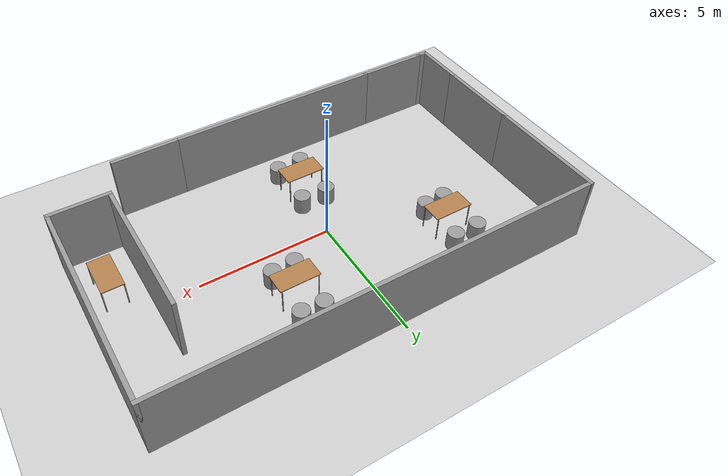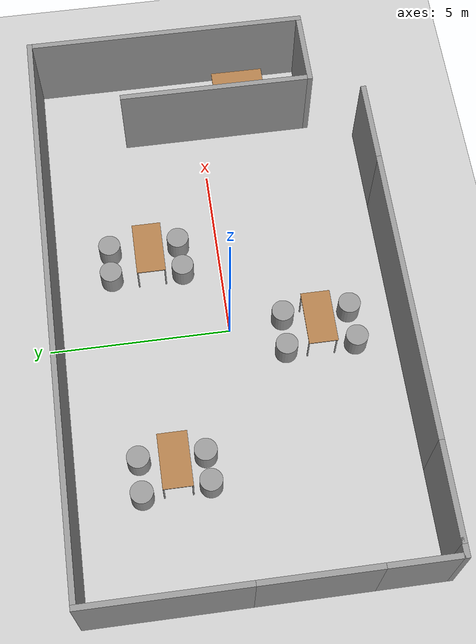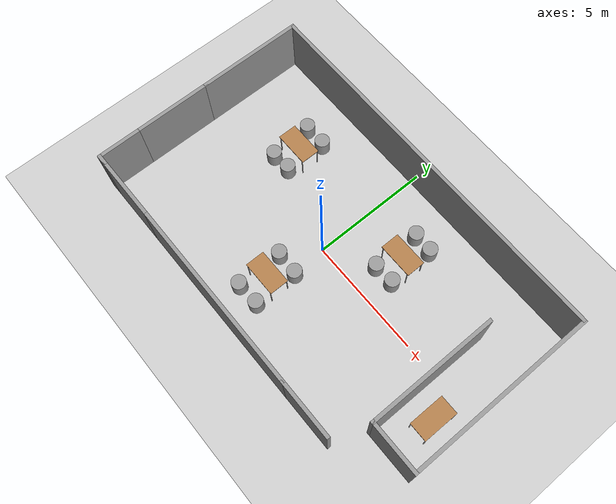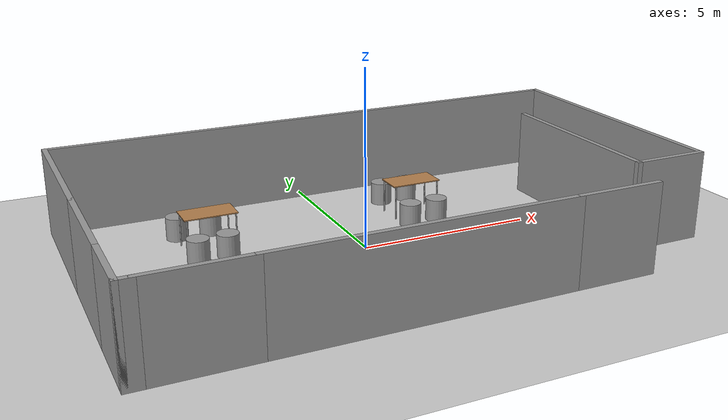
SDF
<sdf version="1.7">
 <world name="default">
  <light name="sun" type="directional">
   <pose>0 0 10 0 -0 0</pose>
   <diffuse>0.8 0.8 0.8 1</diffuse>
   <specular>0.2 0.2 0.2 1</specular>
   <attenuation>
    <range>1000</range>
    <constant>0.9</constant>
    <linear>0.01</linear>
    <quadratic>0.001</quadratic>
   </attenuation>
   <direction>-0.5 0.1 -0.9</direction>
   <spot><inner_angle>0</inner_angle><outer_angle>0</outer_angle><falloff>0</falloff></spot>
  </light>
  <model name="ground_plane">
   <static>1</static>
   <link name="link">
    <collision name="collision">
     <geometry><plane><normal>0 0 1</normal><size>100 100</size></plane></geometry>
     <surface><friction><ode><mu>100</mu><mu2>50</mu2></ode></friction></surface>
    </collision>
    <visual name="visual">
     <cast_shadows>0</cast_shadows>
     <geometry><plane><normal>0 0 1</normal><size>100 100</size></plane></geometry>
     <material>
      <script><uri>file://media/materials/scripts/gazebo.material</uri><name>Gazebo/Grey</name></script>
     </material>
    </visual>
   </link>
  </model>
  <gravity>0 0 -9.8</gravity>
  <magnetic_field>6e-06 2.3e-05 -4.2e-05</magnetic_field>
  <atmosphere type="adiabatic"/>
  <physics type="ode">
   <max_step_size>0.001</max_step_size>
   <real_time_factor>1</real_time_factor>
   <real_time_update_rate>1000</real_time_update_rate>
  </physics>
  <scene><ambient>0.4 0.4 0.4 1</ambient><background>0.7 0.7 0.7 1</background><shadows>1</shadows></scene>
  <audio><device>default</device></audio>
  <spherical_coordinates>
   <surface_model>EARTH_WGS84</surface_model>
   <latitude_deg>0</latitude_deg>
   <longitude_deg>0</longitude_deg>
   <elevation>0</elevation>
   <heading_deg>0</heading_deg>
  </spherical_coordinates>
  <model name="Untitled">
   <pose>0.521452 0.034548 0 0 -0 0</pose>
   <link name="Wall_10">
    <collision name="Wall_10_Collision">
     <geometry><box><size>2.75 0.15 2.5</size></box></geometry>
     <pose>0 0 1.25 0 -0 0</pose>
    </collision>
    <visual name="Wall_10_Visual">
     <pose>0 0 1.25 0 -0 0</pose>
     <geometry><box><size>2.75 0.15 2.5</size></box></geometry>
     <material>
      <script><uri>file://media/materials/scripts/gazebo.material</uri><name>Gazebo/Grey</name></script>
      <ambient>1 1 1 1</ambient>
     </material>
     <meta><layer>0</layer></meta>
    </visual>
    <pose>-6.4 -4.65 0 0 -0 3.14159</pose>
   </link>
   <link name="Wall_12">
    <collision name="Wall_12_Collision">
     <geometry><box><size>0.5 0.15 2.5</size></box></geometry>
     <pose>0 0 1.25 0 -0 0</pose>
    </collision>
    <visual name="Wall_12_Visual">
     <pose>0 0 1.25 0 -0 0</pose>
     <geometry><box><size>0.5 0.15 2.5</size></box></geometry>
     <material>
      <script><uri>file://media/materials/scripts/gazebo.material</uri><name>Gazebo/Grey</name></script>
      <ambient>1 1 1 1</ambient>
     </material>
     <meta><layer>0</layer></meta>
    </visual>
    <pose>-7.875 -4.65 0 0 -0 3.14159</pose>
   </link>
   <link name="Wall_13">
    <collision name="Wall_13_Collision">
     <geometry><box><size>2 0.15 2.5</size></box></geometry>
     <pose>0 0 1.25 0 -0 0</pose>
    </collision>
    <visual name="Wall_13_Visual">
     <pose>0 0 1.25 0 -0 0</pose>
     <geometry><box><size>2 0.15 2.5</size></box></geometry>
     <material>
      <script><uri>file://media/materials/scripts/gazebo.material</uri><name>Gazebo/Grey</name></script>
      <ambient>1 1 1 1</ambient>
     </material>
     <meta><layer>0</layer></meta>
    </visual>
    <pose>-8.05 -3.725 0 0 -0 1.5708</pose>
   </link>
   <link name="Wall_16">
    <collision name="Wall_16_Collision">
     <geometry><box><size>3.25 0.15 2.5</size></box></geometry>
     <pose>0 0 1.25 0 -0 0</pose>
    </collision>
    <visual name="Wall_16_Visual">
     <pose>0 0 1.25 0 -0 0</pose>
     <geometry><box><size>3.25 0.15 2.5</size></box></geometry>
     <material>
      <script><uri>file://media/materials/scripts/gazebo.material</uri><name>Gazebo/Grey</name></script>
      <ambient>1 1 1 1</ambient>
     </material>
     <meta><layer>0</layer></meta>
    </visual>
    <pose>-8.05 -1.25 0 0 -0 1.5708</pose>
   </link>
   <link name="Wall_18">
    <collision name="Wall_18_Collision">
     <geometry><box><size>4.5 0.15 2.5</size></box></geometry>
     <pose>0 0 1.25 0 -0 0</pose>
    </collision>
    <visual name="Wall_18_Visual">
     <pose>0 0 1.25 0 -0 0</pose>
     <geometry><box><size>4.5 0.15 2.5</size></box></geometry>
     <material>
      <script><uri>file://media/materials/scripts/gazebo.material</uri><name>Gazebo/Grey</name></script>
      <ambient>1 1 1 1</ambient>
     </material>
     <meta><layer>0</layer></meta>
    </visual>
    <pose>-8.05 2.475 0 0 -0 1.5708</pose>
   </link>
   <link name="Wall_20">
    <collision name="Wall_20_Collision">
     <geometry><box><size>16.25 0.15 2.5</size></box></geometry>
     <pose>0 0 1.25 0 -0 0</pose>
    </collision>
    <visual name="Wall_20_Visual">
     <pose>0 0 1.25 0 -0 0</pose>
     <geometry><box><size>16.25 0.15 2.5</size></box></geometry>
     <material>
      <script><uri>file://media/materials/scripts/gazebo.material</uri><name>Gazebo/Grey</name></script>
      <ambient>1 1 1 1</ambient>
     </material>
     <meta><layer>0</layer></meta>
    </visual>
    <pose>-0 4.65 0 0 -0 0</pose>
   </link>
   <link name="Wall_21">
    <collision name="Wall_21_Collision">
     <geometry><box><size>8 0.15 2.5</size></box></geometry>
     <pose>0 0 1.25 0 -0 0</pose>
    </collision>
    <visual name="Wall_21_Visual">
     <pose>0 0 1.25 0 -0 0</pose>
     <geometry><box><size>8 0.15 2.5</size></box></geometry>
     <material>
      <script><uri>file://media/materials/scripts/gazebo.material</uri><name>Gazebo/Grey</name></script>
      <ambient>1 1 1 1</ambient>
     </material>
     <meta><layer>0</layer></meta>
    </visual>
    <pose>8.05 0.725 0 0 -0 -1.5708</pose>
   </link>
   <link name="Wall_22">
    <collision name="Wall_22_Collision">
     <geometry><box><size>2.25 0.15 2.5</size></box></geometry>
     <pose>0 0 1.25 0 -0 0</pose>
    </collision>
    <visual name="Wall_22_Visual">
     <pose>0 0 1.25 0 -0 0</pose>
     <geometry><box><size>2.25 0.15 2.5</size></box></geometry>
     <material>
      <script><uri>file://media/materials/scripts/gazebo.material</uri><name>Gazebo/Grey</name></script>
      <ambient>1 1 1 1</ambient>
     </material>
     <meta><layer>0</layer></meta>
    </visual>
    <pose>7 -3.2 0 0 -0 3.14159</pose>
   </link>
   <link name="Wall_23">
    <collision name="Wall_23_Collision">
     <geometry><box><size>5.5 0.15 2.5</size></box></geometry>
     <pose>0 0 1.25 0 -0 0</pose>
    </collision>
    <visual name="Wall_23_Visual">
     <pose>0 0 1.25 0 -0 0</pose>
     <geometry><box><size>5.5 0.15 2.5</size></box></geometry>
     <material>
      <script><uri>file://media/materials/scripts/gazebo.material</uri><name>Gazebo/Grey</name></script>
      <ambient>1 1 1 1</ambient>
     </material>
     <meta><layer>0</layer></meta>
    </visual>
    <pose>5.95 -0.525 0 0 -0 1.5708</pose>
   </link>
   <link name="Wall_25">
    <collision name="Wall_25_Collision">
     <geometry><box><size>2.5 0.15 2.5</size></box></geometry>
     <pose>0 0 1.25 0 -0 0</pose>
    </collision>
    <visual name="Wall_25_Visual">
     <pose>0 0 1.25 0 -0 0</pose>
     <geometry><box><size>2.5 0.15 2.5</size></box></geometry>
     <material>
      <script><uri>file://media/materials/scripts/gazebo.material</uri><name>Gazebo/Grey</name></script>
      <ambient>1 1 1 1</ambient>
     </material>
     <meta><layer>0</layer></meta>
    </visual>
    <pose>4.175 -4.65 0 0 -0 0</pose>
   </link>
   <link name="Wall_8">
    <collision name="Wall_8_Collision">
     <geometry><box><size>8.25 0.15 2.5</size></box></geometry>
     <pose>0 0 1.25 0 -0 0</pose>
    </collision>
    <visual name="Wall_8_Visual">
     <pose>0 0 1.25 0 -0 0</pose>
     <geometry><box><size>8.25 0.15 2.5</size></box></geometry>
     <material>
      <script><uri>file://media/materials/scripts/gazebo.material</uri><name>Gazebo/Grey</name></script>
      <ambient>1 1 1 1</ambient>
     </material>
     <meta><layer>0</layer></meta>
    </visual>
    <pose>-1.05 -4.65 0 0 -0 3.14159</pose>
   </link>
   <static>1</static>
  </model>
  <model name="table">
   <static>1</static>
   <link name="link">
    <collision name="surface">
     <pose>0 0 1 0 -0 0</pose>
     <geometry><box><size>1.5 0.8 0.03</size></box></geometry>
     <surface><friction><ode><mu>0.6</mu><mu2>0.6</mu2></ode></friction></surface>
    </collision>
    <visual name="visual1">
     <pose>0 0 1 0 -0 0</pose>
     <geometry><box><size>1.5 0.8 0.03</size></box></geometry>
     <material>
      <script><uri>file://media/materials/scripts/gazebo.material</uri><name>Gazebo/Wood</name></script>
     </material>
    </visual>
    <collision name="front_left_leg">
     <pose>0.68 0.38 0.5 0 -0 0</pose>
     <geometry><cylinder><radius>0.02</radius><length>1</length></cylinder></geometry>
    </collision>
    <visual name="front_left_leg">
     <pose>0.68 0.38 0.5 0 -0 0</pose>
     <geometry><cylinder><radius>0.02</radius><length>1</length></cylinder></geometry>
     <material>
      <script><uri>file://media/materials/scripts/gazebo.material</uri><name>Gazebo/Grey</name></script>
     </material>
    </visual>
    <collision name="front_right_leg">
     <pose>0.68 -0.38 0.5 0 -0 0</pose>
     <geometry><cylinder><radius>0.02</radius><length>1</length></cylinder></geometry>
    </collision>
    <visual name="front_right_leg">
     <pose>0.68 -0.38 0.5 0 -0 0</pose>
     <geometry><cylinder><radius>0.02</radius><length>1</length></cylinder></geometry>
     <material>
      <script><uri>file://media/materials/scripts/gazebo.material</uri><name>Gazebo/Grey</name></script>
     </material>
    </visual>
    <collision name="back_right_leg">
     <pose>-0.68 -0.38 0.5 0 -0 0</pose>
     <geometry><cylinder><radius>0.02</radius><length>1</length></cylinder></geometry>
    </collision>
    <visual name="back_right_leg">
     <pose>-0.68 -0.38 0.5 0 -0 0</pose>
     <geometry><cylinder><radius>0.02</radius><length>1</length></cylinder></geometry>
     <material>
      <script><uri>file://media/materials/scripts/gazebo.material</uri><name>Gazebo/Grey</name></script>
     </material>
    </visual>
    <collision name="back_left_leg">
     <pose>-0.68 0.38 0.5 0 -0 0</pose>
     <geometry><cylinder><radius>0.02</radius><length>1</length></cylinder></geometry>
    </collision>
    <visual name="back_left_leg">
     <pose>-0.68 0.38 0.5 0 -0 0</pose>
     <geometry><cylinder><radius>0.02</radius><length>1</length></cylinder></geometry>
     <material>
      <script><uri>file://media/materials/scripts/gazebo.material</uri><name>Gazebo/Grey</name></script>
     </material>
    </visual>
   </link>
   <pose>7.60728 -1.26469 0 0 0 -1.57393</pose>
  </model>
  <model name="table_0">
   <static>1</static>
   <link name="link">
    <collision name="surface">
     <pose>0 0 1 0 -0 0</pose>
     <geometry><box><size>1.5 0.8 0.03</size></box></geometry>
     <surface><friction><ode><mu>0.6</mu><mu2>0.6</mu2></ode></friction></surface>
    </collision>
    <visual name="visual1">
     <pose>0 0 1 0 -0 0</pose>
     <geometry><box><size>1.5 0.8 0.03</size></box></geometry>
     <material>
      <script><uri>file://media/materials/scripts/gazebo.material</uri><name>Gazebo/Wood</name></script>
     </material>
    </visual>
    <collision name="front_left_leg">
     <pose>0.68 0.38 0.5 0 -0 0</pose>
     <geometry><cylinder><radius>0.02</radius><length>1</length></cylinder></geometry>
    </collision>
    <visual name="front_left_leg">
     <pose>0.68 0.38 0.5 0 -0 0</pose>
     <geometry><cylinder><radius>0.02</radius><length>1</length></cylinder></geometry>
     <material>
      <script><uri>file://media/materials/scripts/gazebo.material</uri><name>Gazebo/Grey</name></script>
     </material>
    </visual>
    <collision name="front_right_leg">
     <pose>0.68 -0.38 0.5 0 -0 0</pose>
     <geometry><cylinder><radius>0.02</radius><length>1</length></cylinder></geometry>
    </collision>
    <visual name="front_right_leg">
     <pose>0.68 -0.38 0.5 0 -0 0</pose>
     <geometry><cylinder><radius>0.02</radius><length>1</length></cylinder></geometry>
     <material>
      <script><uri>file://media/materials/scripts/gazebo.material</uri><name>Gazebo/Grey</name></script>
     </material>
    </visual>
    <collision name="back_right_leg">
     <pose>-0.68 -0.38 0.5 0 -0 0</pose>
     <geometry><cylinder><radius>0.02</radius><length>1</length></cylinder></geometry>
    </collision>
    <visual name="back_right_leg">
     <pose>-0.68 -0.38 0.5 0 -0 0</pose>
     <geometry><cylinder><radius>0.02</radius><length>1</length></cylinder></geometry>
     <material>
      <script><uri>file://media/materials/scripts/gazebo.material</uri><name>Gazebo/Grey</name></script>
     </material>
    </visual>
    <collision name="back_left_leg">
     <pose>-0.68 0.38 0.5 0 -0 0</pose>
     <geometry><cylinder><radius>0.02</radius><length>1</length></cylinder></geometry>
    </collision>
    <visual name="back_left_leg">
     <pose>-0.68 0.38 0.5 0 -0 0</pose>
     <geometry><cylinder><radius>0.02</radius><length>1</length></cylinder></geometry>
     <material>
      <script><uri>file://media/materials/scripts/gazebo.material</uri><name>Gazebo/Grey</name></script>
     </material>
    </visual>
   </link>
   <pose>2.39203 1.96612 0 0 -0 0</pose>
  </model>
  <model name="unit_cylinder">
   <pose>2.79436 3.06335 0.328649 -0 -0 -0</pose>
   <link name="link">
    <inertial>
     <mass>1</mass>
     <inertia><ixx>0.145833</ixx><ixy>0</ixy><ixz>0</ixz><iyy>0.145833</iyy><iyz>0</iyz><izz>0.125</izz></inertia>
    </inertial>
    <collision name="collision">
     <geometry><cylinder><radius>0.307395</radius><length>0.657297</length></cylinder></geometry>
    </collision>
    <visual name="visual">
     <geometry><cylinder><radius>0.307395</radius><length>0.657297</length></cylinder></geometry>
     <material>
      <script><name>Gazebo/Grey</name><uri>file://media/materials/scripts/gazebo.material</uri></script>
     </material>
    </visual>
   </link>
  </model>
  <model name="unit_cylinder_clone">
   <pose>1.96261 3.09522 0.328646 1e-06 1e-06 0</pose>
   <link name="link">
    <inertial>
     <mass>1</mass>
     <inertia><ixx>0.145833</ixx><ixy>0</ixy><ixz>0</ixz><iyy>0.145833</iyy><iyz>0</iyz><izz>0.125</izz></inertia>
    </inertial>
    <collision name="collision">
     <geometry><cylinder><radius>0.307395</radius><length>0.657298</length></cylinder></geometry>
    </collision>
    <visual name="visual">
     <geometry><cylinder><radius>0.307395</radius><length>0.657298</length></cylinder></geometry>
     <material>
      <script><name>Gazebo/Grey</name><uri>file://media/materials/scripts/gazebo.material</uri></script>
     </material>
    </visual>
   </link>
  </model>
  <model name="unit_cylinder_clone_0">
   <pose>2.79283 1.11847 0.328642 -1e-06 -1e-06 0</pose>
   <link name="link">
    <inertial>
     <mass>1</mass>
     <inertia><ixx>0.145833</ixx><ixy>0</ixy><ixz>0</ixz><iyy>0.145833</iyy><iyz>0</iyz><izz>0.125</izz></inertia>
    </inertial>
    <collision name="collision">
     <geometry><cylinder><radius>0.307395</radius><length>0.657298</length></cylinder></geometry>
    </collision>
    <visual name="visual">
     <geometry><cylinder><radius>0.307395</radius><length>0.657298</length></cylinder></geometry>
     <material>
      <script><name>Gazebo/Grey</name><uri>file://media/materials/scripts/gazebo.material</uri></script>
     </material>
    </visual>
   </link>
  </model>
  <model name="unit_cylinder_clone_1">
   <pose>1.92315 1.07893 0.328646 1e-06 1e-06 0</pose>
   <link name="link">
    <inertial>
     <mass>1</mass>
     <inertia><ixx>0.145833</ixx><ixy>0</ixy><ixz>0</ixz><iyy>0.145833</iyy><iyz>0</iyz><izz>0.125</izz></inertia>
    </inertial>
    <collision name="collision">
     <geometry><cylinder><radius>0.307395</radius><length>0.657298</length></cylinder></geometry>
    </collision>
    <visual name="visual">
     <geometry><cylinder><radius>0.307395</radius><length>0.657298</length></cylinder></geometry>
     <material>
      <script><name>Gazebo/Grey</name><uri>file://media/materials/scripts/gazebo.material</uri></script>
     </material>
    </visual>
   </link>
  </model>
  <model name="table_0_clone">
   <static>1</static>
   <link name="link">
    <collision name="surface">
     <pose>0 0 1 0 -0 0</pose>
     <geometry><box><size>1.5 0.8 0.03</size></box></geometry>
     <surface><friction><ode><mu>0.6</mu><mu2>0.6</mu2></ode></friction></surface>
    </collision>
    <visual name="visual1">
     <pose>0 0 1 0 -0 0</pose>
     <geometry><box><size>1.5 0.8 0.03</size></box></geometry>
     <material>
      <script><uri>file://media/materials/scripts/gazebo.material</uri><name>Gazebo/Wood</name></script>
     </material>
    </visual>
    <collision name="front_left_leg">
     <pose>0.68 0.38 0.5 0 -0 0</pose>
     <geometry><cylinder><radius>0.02</radius><length>1</length></cylinder></geometry>
    </collision>
    <visual name="front_left_leg">
     <pose>0.68 0.38 0.5 0 -0 0</pose>
     <geometry><cylinder><radius>0.02</radius><length>1</length></cylinder></geometry>
     <material>
      <script><uri>file://media/materials/scripts/gazebo.material</uri><name>Gazebo/Grey</name></script>
     </material>
    </visual>
    <collision name="front_right_leg">
     <pose>0.68 -0.38 0.5 0 -0 0</pose>
     <geometry><cylinder><radius>0.02</radius><length>1</length></cylinder></geometry>
    </collision>
    <visual name="front_right_leg">
     <pose>0.68 -0.38 0.5 0 -0 0</pose>
     <geometry><cylinder><radius>0.02</radius><length>1</length></cylinder></geometry>
     <material>
      <script><uri>file://media/materials/scripts/gazebo.material</uri><name>Gazebo/Grey</name></script>
     </material>
    </visual>
    <collision name="back_right_leg">
     <pose>-0.68 -0.38 0.5 0 -0 0</pose>
     <geometry><cylinder><radius>0.02</radius><length>1</length></cylinder></geometry>
    </collision>
    <visual name="back_right_leg">
     <pose>-0.68 -0.38 0.5 0 -0 0</pose>
     <geometry><cylinder><radius>0.02</radius><length>1</length></cylinder></geometry>
     <material>
      <script><uri>file://media/materials/scripts/gazebo.material</uri><name>Gazebo/Grey</name></script>
     </material>
    </visual>
    <collision name="back_left_leg">
     <pose>-0.68 0.38 0.5 0 -0 0</pose>
     <geometry><cylinder><radius>0.02</radius><length>1</length></cylinder></geometry>
    </collision>
    <visual name="back_left_leg">
     <pose>-0.68 0.38 0.5 0 -0 0</pose>
     <geometry><cylinder><radius>0.02</radius><length>1</length></cylinder></geometry>
     <material>
      <script><uri>file://media/materials/scripts/gazebo.material</uri><name>Gazebo/Grey</name></script>
     </material>
    </visual>
   </link>
   <pose>-3.82152 1.94077 0 0 -0 0</pose>
  </model>
  <model name="unit_cylinder_clone_2">
   <pose>-3.5064 2.88961 0.328649 0 -0 0</pose>
   <link name="link">
    <inertial>
     <mass>1</mass>
     <inertia><ixx>0.145833</ixx><ixy>0</ixy><ixz>0</ixz><iyy>0.145833</iyy><iyz>0</iyz><izz>0.125</izz></inertia>
    </inertial>
    <collision name="collision">
     <geometry><cylinder><radius>0.307395</radius><length>0.657298</length></cylinder></geometry>
    </collision>
    <visual name="visual">
     <geometry><cylinder><radius>0.307395</radius><length>0.657298</length></cylinder></geometry>
     <material>
      <script><name>Gazebo/Grey</name><uri>file://media/materials/scripts/gazebo.material</uri></script>
     </material>
    </visual>
   </link>
  </model>
  <model name="unit_cylinder_clone_3">
   <pose>-4.4562 2.88961 0.328646 1e-06 1e-06 0</pose>
   <link name="link">
    <inertial>
     <mass>1</mass>
     <inertia><ixx>0.145833</ixx><ixy>0</ixy><ixz>0</ixz><iyy>0.145833</iyy><iyz>0</iyz><izz>0.125</izz></inertia>
    </inertial>
    <collision name="collision">
     <geometry><cylinder><radius>0.307395</radius><length>0.657298</length></cylinder></geometry>
    </collision>
    <visual name="visual">
     <geometry><cylinder><radius>0.307395</radius><length>0.657298</length></cylinder></geometry>
     <material>
      <script><name>Gazebo/Grey</name><uri>file://media/materials/scripts/gazebo.material</uri></script>
     </material>
    </visual>
   </link>
  </model>
  <model name="unit_cylinder_clone_4">
   <pose>-3.53091 1.11149 0.328646 1e-06 1e-06 0</pose>
   <link name="link">
    <inertial>
     <mass>1</mass>
     <inertia><ixx>0.145833</ixx><ixy>0</ixy><ixz>0</ixz><iyy>0.145833</iyy><iyz>0</iyz><izz>0.125</izz></inertia>
    </inertial>
    <collision name="collision">
     <geometry><cylinder><radius>0.307395</radius><length>0.657298</length></cylinder></geometry>
    </collision>
    <visual name="visual">
     <geometry><cylinder><radius>0.307395</radius><length>0.657298</length></cylinder></geometry>
     <material>
      <script><name>Gazebo/Grey</name><uri>file://media/materials/scripts/gazebo.material</uri></script>
     </material>
    </visual>
   </link>
  </model>
  <model name="unit_cylinder_clone_5">
   <pose>-4.36116 1.07191 0.328642 -1e-06 -1e-06 0</pose>
   <link name="link">
    <inertial>
     <mass>1</mass>
     <inertia><ixx>0.145833</ixx><ixy>0</ixy><ixz>0</ixz><iyy>0.145833</iyy><iyz>0</iyz><izz>0.125</izz></inertia>
    </inertial>
    <collision name="collision">
     <geometry><cylinder><radius>0.307395</radius><length>0.657298</length></cylinder></geometry>
    </collision>
    <visual name="visual">
     <geometry><cylinder><radius>0.307395</radius><length>0.657298</length></cylinder></geometry>
     <material>
      <script><name>Gazebo/Grey</name><uri>file://media/materials/scripts/gazebo.material</uri></script>
     </material>
    </visual>
   </link>
  </model>
  <model name="table_0_clone_clone">
   <static>1</static>
   <link name="link">
    <collision name="surface">
     <pose>0 0 1 0 -0 0</pose>
     <geometry><box><size>1.5 0.8 0.03</size></box></geometry>
     <surface><friction><ode><mu>0.6</mu><mu2>0.6</mu2></ode></friction></surface>
    </collision>
    <visual name="visual1">
     <pose>0 0 1 0 -0 0</pose>
     <geometry><box><size>1.5 0.8 0.03</size></box></geometry>
     <material>
      <script><uri>file://media/materials/scripts/gazebo.material</uri><name>Gazebo/Wood</name></script>
     </material>
    </visual>
    <collision name="front_left_leg">
     <pose>0.68 0.38 0.5 0 -0 0</pose>
     <geometry><cylinder><radius>0.02</radius><length>1</length></cylinder></geometry>
    </collision>
    <visual name="front_left_leg">
     <pose>0.68 0.38 0.5 0 -0 0</pose>
     <geometry><cylinder><radius>0.02</radius><length>1</length></cylinder></geometry>
     <material>
      <script><uri>file://media/materials/scripts/gazebo.material</uri><name>Gazebo/Grey</name></script>
     </material>
    </visual>
    <collision name="front_right_leg">
     <pose>0.68 -0.38 0.5 0 -0 0</pose>
     <geometry><cylinder><radius>0.02</radius><length>1</length></cylinder></geometry>
    </collision>
    <visual name="front_right_leg">
     <pose>0.68 -0.38 0.5 0 -0 0</pose>
     <geometry><cylinder><radius>0.02</radius><length>1</length></cylinder></geometry>
     <material>
      <script><uri>file://media/materials/scripts/gazebo.material</uri><name>Gazebo/Grey</name></script>
     </material>
    </visual>
    <collision name="back_right_leg">
     <pose>-0.68 -0.38 0.5 0 -0 0</pose>
     <geometry><cylinder><radius>0.02</radius><length>1</length></cylinder></geometry>
    </collision>
    <visual name="back_right_leg">
     <pose>-0.68 -0.38 0.5 0 -0 0</pose>
     <geometry><cylinder><radius>0.02</radius><length>1</length></cylinder></geometry>
     <material>
      <script><uri>file://media/materials/scripts/gazebo.material</uri><name>Gazebo/Grey</name></script>
     </material>
    </visual>
    <collision name="back_left_leg">
     <pose>-0.68 0.38 0.5 0 -0 0</pose>
     <geometry><cylinder><radius>0.02</radius><length>1</length></cylinder></geometry>
    </collision>
    <visual name="back_left_leg">
     <pose>-0.68 0.38 0.5 0 -0 0</pose>
     <geometry><cylinder><radius>0.02</radius><length>1</length></cylinder></geometry>
     <material>
      <script><uri>file://media/materials/scripts/gazebo.material</uri><name>Gazebo/Grey</name></script>
     </material>
    </visual>
   </link>
   <pose>-0.328644 -2.40711 0 0 -0 0</pose>
  </model>
  <model name="unit_cylinder_clone_4_clone">
   <pose>0.145774 -3.35594 0.328642 -1e-06 -1e-06 0</pose>
   <link name="link">
    <inertial>
     <mass>1</mass>
     <inertia><ixx>0.145833</ixx><ixy>0</ixy><ixz>0</ixz><iyy>0.145833</iyy><iyz>0</iyz><izz>0.125</izz></inertia>
    </inertial>
    <collision name="collision">
     <geometry><cylinder><radius>0.307395</radius><length>0.657298</length></cylinder></geometry>
    </collision>
    <visual name="visual">
     <geometry><cylinder><radius>0.307395</radius><length>0.657298</length></cylinder></geometry>
     <material>
      <script><name>Gazebo/Grey</name><uri>file://media/materials/scripts/gazebo.material</uri></script>
     </material>
    </visual>
   </link>
  </model>
  <model name="unit_cylinder_clone_4_clone_0">
   <pose>-0.842562 -3.39548 0.328646 1e-06 1e-06 0</pose>
   <link name="link">
    <inertial>
     <mass>1</mass>
     <inertia><ixx>0.145833</ixx><ixy>0</ixy><ixz>0</ixz><iyy>0.145833</iyy><iyz>0</iyz><izz>0.125</izz></inertia>
    </inertial>
    <collision name="collision">
     <geometry><cylinder><radius>0.307395</radius><length>0.657298</length></cylinder></geometry>
    </collision>
    <visual name="visual">
     <geometry><cylinder><radius>0.307395</radius><length>0.657298</length></cylinder></geometry>
     <material>
      <script><name>Gazebo/Grey</name><uri>file://media/materials/scripts/gazebo.material</uri></script>
     </material>
    </visual>
   </link>
  </model>
  <model name="unit_cylinder_clone_4_clone_1">
   <pose>0.145774 -1.49777 0.328642 -1e-06 -1e-06 0</pose>
   <link name="link">
    <inertial>
     <mass>1</mass>
     <inertia><ixx>0.145833</ixx><ixy>0</ixy><ixz>0</ixz><iyy>0.145833</iyy><iyz>0</iyz><izz>0.125</izz></inertia>
    </inertial>
    <collision name="collision">
     <geometry><cylinder><radius>0.307395</radius><length>0.657298</length></cylinder></geometry>
    </collision>
    <visual name="visual">
     <geometry><cylinder><radius>0.307395</radius><length>0.657298</length></cylinder></geometry>
     <material>
      <script><name>Gazebo/Grey</name><uri>file://media/materials/scripts/gazebo.material</uri></script>
     </material>
    </visual>
   </link>
  </model>
  <model name="unit_cylinder_clone_4_clone_2">
   <pose>-0.842562 -1.45827 0.328646 1e-06 1e-06 0</pose>
   <link name="link">
    <inertial>
     <mass>1</mass>
     <inertia><ixx>0.145833</ixx><ixy>0</ixy><ixz>0</ixz><iyy>0.145833</iyy><iyz>0</iyz><izz>0.125</izz></inertia>
    </inertial>
    <collision name="collision">
     <geometry><cylinder><radius>0.307395</radius><length>0.657298</length></cylinder></geometry>
    </collision>
    <visual name="visual">
     <geometry><cylinder><radius>0.307395</radius><length>0.657298</length></cylinder></geometry>
     <material>
      <script><name>Gazebo/Grey</name><uri>file://media/materials/scripts/gazebo.material</uri></script>
     </material>
    </visual>
   </link>
  </model>
 </world>
</sdf>
